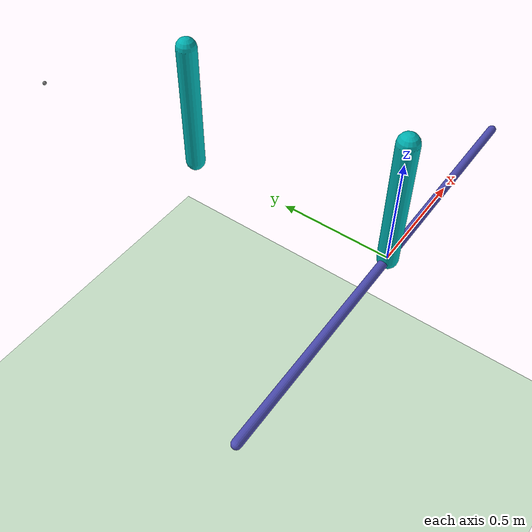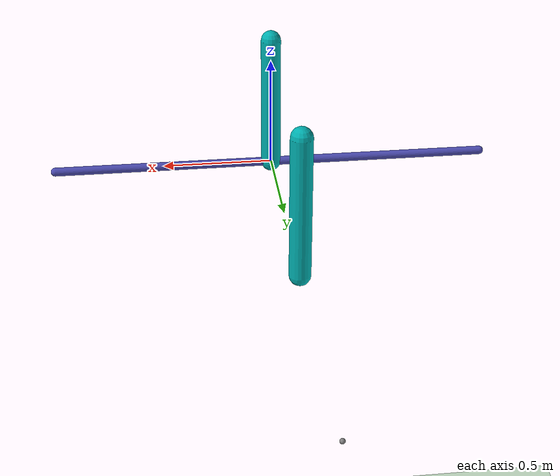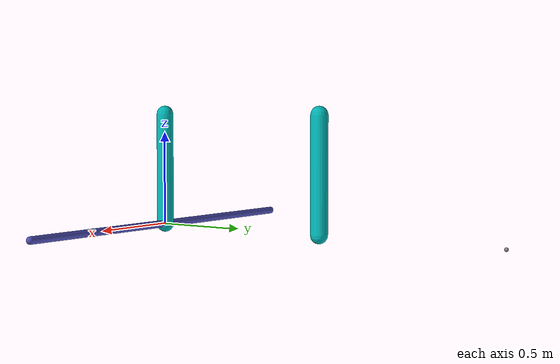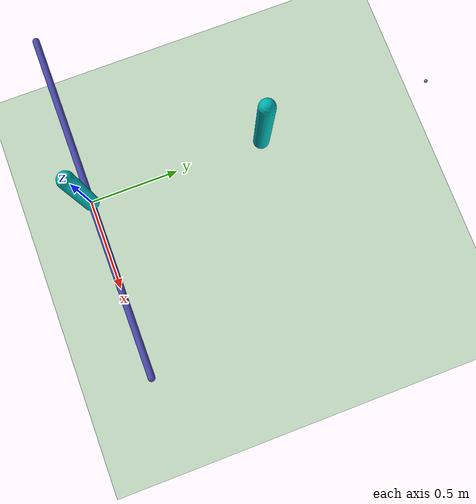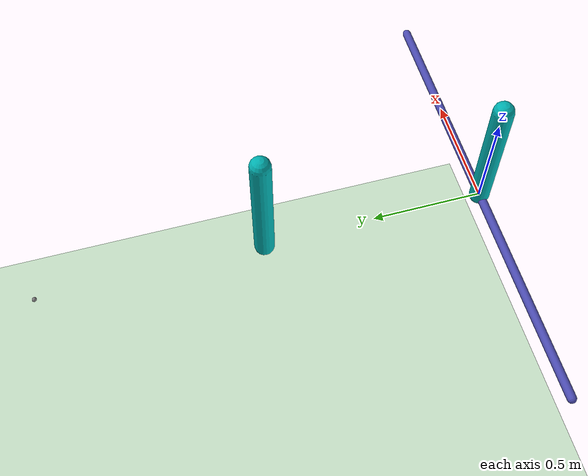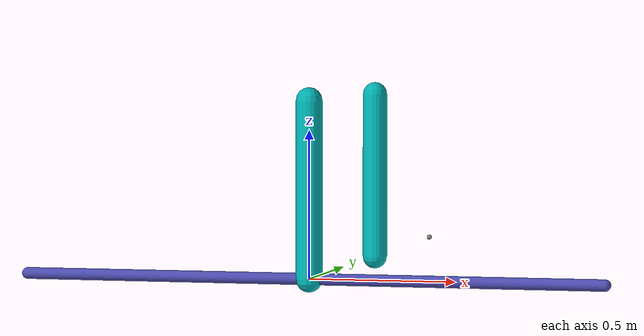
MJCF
<mujoco model="cartpole">
  <compiler coordinate="local" inertiafromgeom="true"/>
  <custom>
    <numeric data="2" name="frame_skip"/>
  </custom>
  <default>
    <joint damping="0.05" range="-314 314"/>
    <geom contype="0" friction="1 0.1 0.1" rgba="0.7 0.7 0 1"/>
  </default>
  <option gravity="0 -9.81 0" integrator="RK4" timestep="0.01"/>
  <size nstack="3000"/>
  <worldbody>
    <geom name="floor" pos="0 0 -3.0" rgba="0.8 0.9 0.8 1" size="40 40 40" type="plane"/>
    <geom name="rail" pos="0 0 0" quat="0.707 0 0.707 0" rgba="0.3 0.3 0.7 1" size="0.02 1" type="capsule"/>
    <body name="pole" pos="0 0 0">
      <inertial pos="0 0.5 0" mass="1" fullinertia="1 1 1 0 0 0"></inertial>
      <joint axis="1 0 0" name="hinge_x" pos="0 0 0" type="hinge"/>
      <joint axis="0 1 0" name="hinge_y" pos="0 0 0" type="hinge"/>
      <joint axis="0 0 1" name="hinge_z" pos="0 0 0" type="hinge"/>
      <geom fromto="0 0 0 0 0 0.6" name="cpole" rgba="0 0.7 0.7 1" size="0.045 0.3" type="capsule"/>
      <body name="pole2" pos="0 1 0">
        <inertial pos="0 0.5 0" mass="1" fullinertia="1 1 1 0 0 0"></inertial>
        <joint axis="1 0 0" name="hinge2_x" pos="0 0 0" type="hinge"/>
        <joint axis="0 1 0" name="hinge2_y" pos="0 0 0" type="hinge"/>
        <joint axis="0 0 1" name="hinge2_z" pos="0 0 0" type="hinge"/>
        <geom fromto="0 0 0 0 0 0.6" name="cpole2" rgba="0 0.7 0.7 1" size="0.045 0.3" type="capsule"/>
        <site name="tip" pos="0 1 0" size="0.01 0.01"/>
        <!-- To plot the end of the body, we can set it in an .xml file OR create a massless body with an extra joint (This will make computation slower) -->
        <!-- Here, we see an issue: the body cannot be exactly "massless", because that will cause NaNs in the forward simulation, so i've set it to 1e-12 -->
        <!-- That still makes our mass matrix instable, so using "site" as an extra IK point is the only correct thing -->
        <body name="tip2" pos="0 1 0">
          <inertial pos="0 0 0" mass="1" fullinertia="1 1 1 0 0 0"></inertial>
          <joint axis="0 0 1" name="hinge3" pos="0 0 0" type="hinge"></joint>
        </body>
      </body>
    </body>
  </worldbody>
  <actuator>
    <motor name="j1" ctrllimited="true" ctrlrange="-1 1" gear="500" joint="hinge_x"/>
    <motor name="j2" ctrllimited="true" ctrlrange="-1 1" gear="500" joint="hinge_y"/>
    <motor name="j3" ctrllimited="true" ctrlrange="-1 1" gear="500" joint="hinge_z"/>
  </actuator>
</mujoco>
